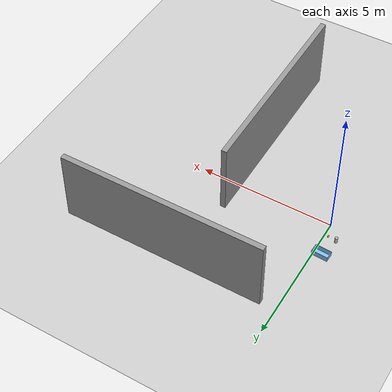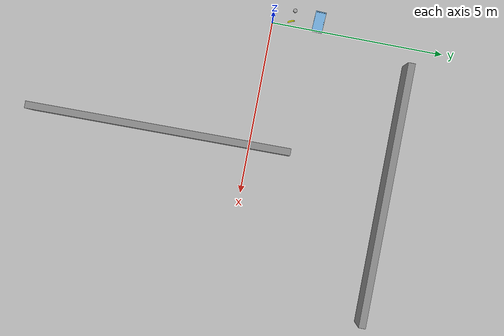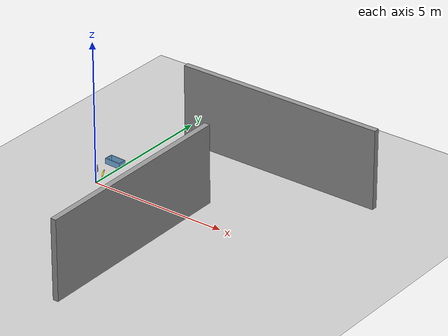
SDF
<sdf version="1.7">
 <world name="ur10e_cubes">
  <gravity>0 0 -9.81</gravity>
  <physics name="default_physics" default="0" type="ode">
   <max_step_size>0.001</max_step_size>
   <real_time_factor>1</real_time_factor>
   <real_time_update_rate>1000</real_time_update_rate>
  </physics>
  <scene><ambient>0.4 0.4 0.4 1</ambient><background>0.7 0.7 0.7 1</background><shadows>1</shadows></scene>
  <light name="sun" type="directional">
   <pose>0 0 10 0 -0 0</pose>
   <diffuse>0.8 0.8 0.8 1</diffuse>
   <specular>0.2 0.2 0.2 1</specular>
   <attenuation>
    <range>1000</range>
    <constant>0.9</constant>
    <linear>0.01</linear>
    <quadratic>0.001</quadratic>
   </attenuation>
   <direction>-0.5 0.1 -0.9</direction>
   <spot><inner_angle>0</inner_angle><outer_angle>0</outer_angle><falloff>0</falloff></spot>
  </light>
  <model name="ground_plane">
   <static>1</static>
   <link name="link_ground_plane">
    <collision name="collision">
     <geometry><plane><normal>0 0 1</normal><size>100 100</size></plane></geometry>
     <surface>
      <contact><collide_bitmask>65535</collide_bitmask></contact>
      <friction><ode><mu>100</mu><mu2>50</mu2></ode></friction>
     </surface>
    </collision>
    <visual name="visual">
     <cast_shadows>0</cast_shadows>
     <geometry><plane><normal>0 0 1</normal><size>100 100</size></plane></geometry>
     <material>
      <script><uri>file://media/materials/scripts/gazebo.material</uri><name>Gazebo/Grey</name></script>
     </material>
    </visual>
   </link>
  </model>
  <magnetic_field>6e-06 2.3e-05 -4.2e-05</magnetic_field>
  <atmosphere type="adiabatic"/>
  <spherical_coordinates>
   <surface_model>EARTH_WGS84</surface_model>
   <latitude_deg>0</latitude_deg>
   <longitude_deg>0</longitude_deg>
   <elevation>0</elevation>
   <heading_deg>0</heading_deg>
  </spherical_coordinates>
  <model name="beer">
   <link name="link">
    <pose>0 0 0.115 0 -0 0</pose>
    <inertial>
     <mass>0.39</mass>
     <inertia><ixx>0.00058</ixx><ixy>0</ixy><ixz>0</ixz><iyy>0.00058</iyy><iyz>0</iyz><izz>0.00019</izz></inertia>
    </inertial>
    <collision name="collision">
     <geometry><cylinder><radius>0.055</radius><length>0.23</length></cylinder></geometry>
    </collision>
    <visual name="visual">
     <geometry><cylinder><radius>0.055</radius><length>0.23</length></cylinder></geometry>
     <material>
      <script>
       <uri>model://beer/materials/scripts</uri>
       <uri>model://beer/materials/textures</uri>
       <name>Beer/Diffuse</name>
      </script>
     </material>
    </visual>
   </link>
   <pose>-0.460524 0.584941 0.000205 -0.001616 -0.00337 -3.11814</pose>
  </model>
  <model name="dropbox">
   <link name="dropbox_link">
    <inertial>
     <pose>0.008419 0.000166 0.084099 0 -0 0</pose>
     <mass>1</mass>
     <inertia>
      <ixx>0.035208</ixx>
      <ixy>0</ixy>
      <ixz>0</ixz>
      <iyy>0.018542</iyy>
      <iyz>0</iyz>
      <izz>0.043333</izz>
     </inertia>
    </inertial>
    <collision name="dropbox_link_collision">
     <geometry>
      <mesh>
       <scale>1 1 1</scale>
       <uri>/home/yilong/git_ws/src/ur10e_robotiq/amiga_manipulation/urdf/meshes/dropbox.dae</uri>
      </mesh>
     </geometry>
     <surface><friction><ode><mu>0.9</mu><mu2>0.9</mu2></ode></friction></surface>
    </collision>
    <visual name="dropbox_link_visual">
     <geometry>
      <mesh>
       <scale>1 1 1</scale>
       <uri>/home/yilong/git_ws/src/ur10e_robotiq/amiga_manipulation/urdf/meshes/dropbox.dae</uri>
      </mesh>
     </geometry>
     <material>
      <script><name>Gazebo/SkyBlue</name><uri>file://media/materials/scripts/gazebo.material</uri></script>
     </material>
    </visual>
   </link>
   <pose>-0.265684 1.31856 -4e-06 2e-06 1.6e-05 1.5214</pose>
  </model>
  <model name="banana">
   <link name="banana_link">
    <inertial>
     <pose>0.008419 0.000166 0.084099 0 -0 0</pose>
     <mass>0.05</mass>
     <inertia>
      <ixx>0.0003587</ixx>
      <ixy>1e-08</ixy>
      <ixz>0</ixz>
      <iyy>0.0003844</iyy>
      <iyz>1e-08</iyz>
      <izz>5.46e-05</izz>
     </inertia>
    </inertial>
    <visual name="banana_link_visual">
     <geometry>
      <mesh>
       <scale>0.2 0.3 0.25</scale>
       <uri>/home/yilong/git_ws/src/ur10e_robotiq/amiga_manipulation/urdf/meshes/banana.dae</uri>
      </mesh>
     </geometry>
     <material>
      <shader type="pixel"><normal_map>__default__</normal_map></shader>
      <script><name>ModelPreview_1::banana_link::banana_link_visual_MATERIAL_</name><uri>__default__</uri></script>
      <ambient>1 1 0 1</ambient>
      <diffuse>1 1 0 1</diffuse>
      <specular>1 1 0 1</specular>
      <emissive>1 1 0 1</emissive>
     </material>
    </visual>
    <collision name="banana_link_collision">
     <geometry>
      <mesh>
       <uri>/home/yilong/git_ws/src/ur10e_robotiq/amiga_manipulation/urdf/meshes/banana.dae</uri>
       <scale>1 1 1</scale>
      </mesh>
     </geometry>
     <surface>
      <friction>
       <ode><mu>0.9</mu><mu2>0.9</mu2><fdir1>0 0 0</fdir1><slip1>0</slip1><slip2>0</slip2></ode>
       <torsional>
        <coefficient>1</coefficient>
        <patch_radius>0</patch_radius>
        <surface_radius>0</surface_radius>
        <use_patch_radius>1</use_patch_radius>
        <ode><slip>0</slip></ode>
       </torsional>
      </friction>
      <bounce><restitution_coefficient>0</restitution_coefficient><threshold>1e+06</threshold></bounce>
      <contact>
       <collide_without_contact>0</collide_without_contact>
       <collide_without_contact_bitmask>1</collide_without_contact_bitmask>
       <collide_bitmask>1</collide_bitmask>
       <ode>
        <soft_cfm>0</soft_cfm>
        <soft_erp>0.2</soft_erp>
        <kp>1e+13</kp>
        <kd>1</kd>
        <max_vel>0.01</max_vel>
        <min_depth>0</min_depth>
       </ode>
       <bullet>
        <split_impulse>1</split_impulse>
        <split_impulse_penetration_threshold>-0.01</split_impulse_penetration_threshold>
        <soft_cfm>0</soft_cfm>
        <soft_erp>0.2</soft_erp>
        <kp>1e+13</kp>
        <kd>1</kd>
       </bullet>
      </contact>
     </surface>
    </collision>
   </link>
   <static>0</static>
   <pose>-0.123107 0.440062 -0.031366 2.22541 0.532586 2.73283</pose>
  </model>
  <model name="grey_wall">
   <static>1</static>
   <link name="link">
    <pose>0 0 1.4 0 -0 0</pose>
    <collision name="collision"><geometry><box><size>7.5 0.2 2.8</size></box></geometry></collision>
    <visual name="visual">
     <cast_shadows>0</cast_shadows>
     <geometry><box><size>7.5 0.2 2.8</size></box></geometry>
     <material>
      <script>
       <uri>model://grey_wall/materials/scripts</uri>
       <uri>model://grey_wall/materials/textures</uri>
       <name>vrc/grey_wall</name>
      </script>
     </material>
    </visual>
   </link>
   <pose>4.29772 4.02807 0 0 -0 0</pose>
  </model>
  <model name="grey_wall_clone">
   <static>1</static>
   <link name="link">
    <pose>0 0 1.4 0 -0 0</pose>
    <collision name="collision"><geometry><box><size>7.5 0.2 2.8</size></box></geometry></collision>
    <visual name="visual">
     <cast_shadows>0</cast_shadows>
     <geometry><box><size>7.5 0.2 2.8</size></box></geometry>
     <material>
      <script>
       <uri>model://grey_wall/materials/scripts</uri>
       <uri>model://grey_wall/materials/textures</uri>
       <name>vrc/grey_wall</name>
      </script>
     </material>
    </visual>
   </link>
   <pose>3.63701 -2.57564 0 0 -0 1.57886</pose>
  </model>
 </world>
</sdf>
